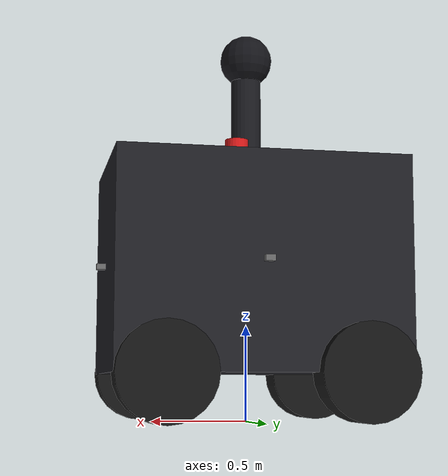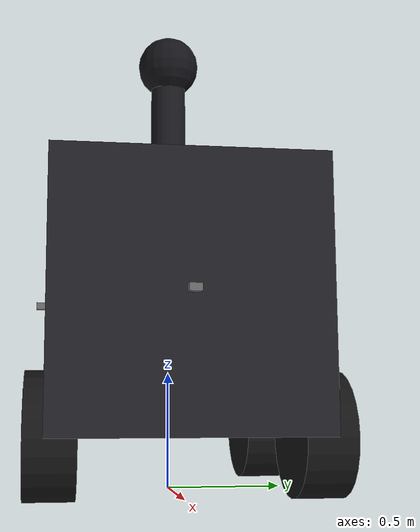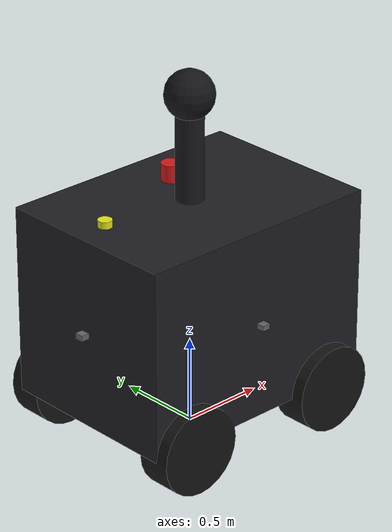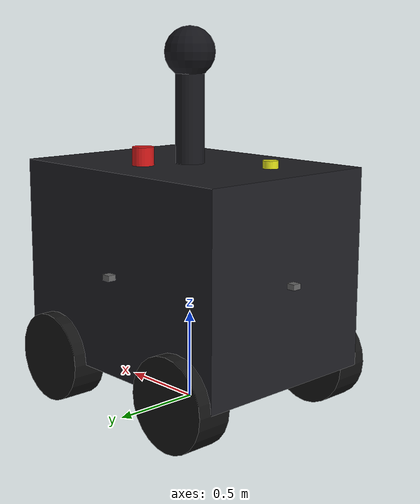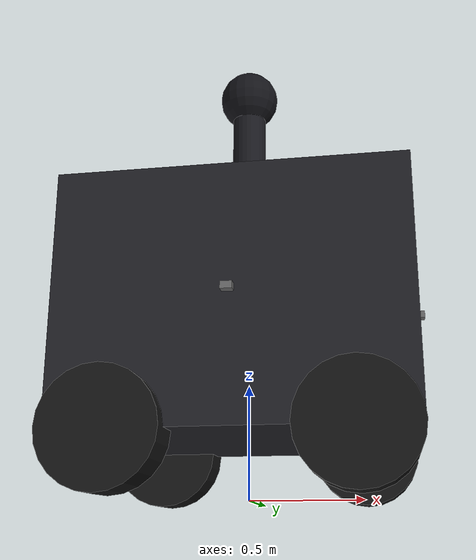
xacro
<?xml version="1.0" ?>
<robot xmlns:xacro="http://www.ros.org/wiki/xacro" name="pguard">

  <xacro:property name="base_length" value="1.50"/>
  <xacro:property name="base_width"  value="1.10"/>
  <xacro:property name="base_height" value="1.10"/>   <!-- chassis box; turret adds another 0.5 m -->
  <xacro:property name="turret_height" value="0.50"/>
  <xacro:property name="base_mass"   value="220.0"/>   <!-- chassis + battery -->
  <xacro:property name="turret_mass" value="10.0"/>

  <xacro:property name="wheel_radius" value="0.25"/>   <!-- 50 cm diameter, so 20 cm obstacle climb is plausible -->
  <xacro:property name="wheel_width"  value="0.20"/>
  <xacro:property name="wheel_mass"   value="5.0"/>
  <xacro:property name="wheel_sep_y"  value="1.05"/>   <!-- lateral spacing -->
  <xacro:property name="wheel_sep_x"  value="1.00"/>   <!-- longitudinal spacing (front-rear) -->

  <xacro:macro name="box_inertia" params="m x y z">
    <inertia ixx="${m*(y*y + z*z)/12.0}" ixy="0" ixz="0"
             iyy="${m*(x*x + z*z)/12.0}" iyz="0"
             izz="${m*(x*x + y*y)/12.0}"/>
  </xacro:macro>

  <xacro:macro name="cylinder_inertia" params="m r h">
    <inertia ixx="${m*(3*r*r + h*h)/12.0}" ixy="0" ixz="0"
             iyy="${m*(3*r*r + h*h)/12.0}" iyz="0"
             izz="${m*r*r/2.0}"/>
  </xacro:macro>

  <link name="base_footprint"/>
  <joint name="base_footprint_joint" type="fixed">
    <parent link="base_footprint"/>
    <child  link="base_link"/>
    <origin xyz="0 0 ${wheel_radius}" rpy="0 0 0"/>
  </joint>

  <link name="base_link">
    <visual>
      <origin xyz="0 0 ${base_height/2}"/>
      <geometry><box size="${base_length} ${base_width} ${base_height}"/></geometry>
      <material name="pguard_black"><color rgba="0.12 0.12 0.14 1"/></material>
    </visual>
    <collision>
      <origin xyz="0 0 ${base_height/2}"/>
      <geometry><box size="${base_length} ${base_width} ${base_height}"/></geometry>
    </collision>
    <inertial>
      <origin xyz="0 0 ${base_height/2}"/>
      <mass value="${base_mass}"/>
      <xacro:box_inertia m="${base_mass}" x="${base_length}" y="${base_width}" z="${base_height}"/>
    </inertial>
  </link>

  <link name="turret_link">
    <visual>
      <geometry><cylinder radius="0.08" length="${turret_height}"/></geometry>
      <material name="pguard_dark"><color rgba="0.10 0.10 0.12 1"/></material>
    </visual>
    <collision>
      <geometry><cylinder radius="0.08" length="${turret_height}"/></geometry>
    </collision>
    <inertial>
      <mass value="${turret_mass}"/>
      <xacro:cylinder_inertia m="${turret_mass}" r="0.08" h="${turret_height}"/>
    </inertial>
  </link>
  <joint name="turret_joint" type="fixed">
    <parent link="base_link"/>
    <child  link="turret_link"/>
    <origin xyz="0 0 ${base_height + turret_height/2}" rpy="0 0 0"/>
  </joint>

  <!-- Turret head: rounded black dome housing the pan/tilt day/night + thermal cameras -->
  <link name="turret_head_link">
    <visual>
      <geometry><sphere radius="0.14"/></geometry>
      <material name="turret_head_black"><color rgba="0.08 0.08 0.10 1"/></material>
    </visual>
    <collision>
      <geometry><sphere radius="0.14"/></geometry>
    </collision>
    <inertial>
      <mass value="2.0"/>
      <inertia ixx="0.02" ixy="0" ixz="0" iyy="0.02" iyz="0" izz="0.02"/>
    </inertial>
  </link>
  <joint name="turret_head_joint" type="fixed">
    <parent link="turret_link"/>
    <child  link="turret_head_link"/>
    <origin xyz="0 0 ${turret_height/2 + 0.10}" rpy="0 0 0"/>
  </joint>

  <link name="beacon_link">
    <visual>
      <geometry><cylinder radius="0.06" length="0.10"/></geometry>
      <material name="beacon_red"><color rgba="0.85 0.10 0.10 1"/></material>
    </visual>
    <inertial>
      <mass value="0.1"/>
      <xacro:cylinder_inertia m="0.1" r="0.06" h="0.10"/>
    </inertial>
  </link>
  <joint name="beacon_joint" type="fixed">
    <parent link="base_link"/>
    <child  link="beacon_link"/>
    <!-- Red beacon mounted on the chassis roof, right of the turret pole -->
    <origin xyz="0.10 0.25 ${base_height + 0.05}"/>
  </joint>

  <xacro:macro name="wheel" params="prefix x_pos y_pos">
    <link name="${prefix}_wheel_link">
      <visual>
        <origin rpy="1.5707963 0 0"/>
        <geometry><cylinder radius="${wheel_radius}" length="${wheel_width}"/></geometry>
        <material name="tire_black"><color rgba="0.08 0.08 0.08 1"/></material>
      </visual>
      <collision>
        <origin rpy="1.5707963 0 0"/>
        <geometry><cylinder radius="${wheel_radius}" length="${wheel_width}"/></geometry>
      </collision>
      <inertial>
        <mass value="${wheel_mass}"/>
        <origin rpy="1.5707963 0 0"/>
        <xacro:cylinder_inertia m="${wheel_mass}" r="${wheel_radius}" h="${wheel_width}"/>
      </inertial>
    </link>

    <joint name="${prefix}_wheel_joint" type="continuous">
      <parent link="base_link"/>
      <child  link="${prefix}_wheel_link"/>
      <origin xyz="${x_pos} ${y_pos} 0" rpy="0 0 0"/>
      <axis xyz="0 1 0"/>
      <dynamics damping="0.5" friction="0.2"/>
    </joint>
  </xacro:macro>

  <xacro:wheel prefix="front_left"  x_pos="${ wheel_sep_x/2}" y_pos="${ wheel_sep_y/2}"/>
  <xacro:wheel prefix="front_right" x_pos="${ wheel_sep_x/2}" y_pos="${-wheel_sep_y/2}"/>
  <xacro:wheel prefix="rear_left"   x_pos="${-wheel_sep_x/2}" y_pos="${ wheel_sep_y/2}"/>
  <xacro:wheel prefix="rear_right"  x_pos="${-wheel_sep_x/2}" y_pos="${-wheel_sep_y/2}"/>

  <link name="imu_link">
    <inertial><mass value="0.05"/><xacro:box_inertia m="0.05" x="0.04" y="0.04" z="0.02"/></inertial>
  </link>
  <joint name="imu_joint" type="fixed">
    <parent link="base_link"/><child link="imu_link"/>
    <origin xyz="0 0 ${base_height/2}"/>
  </joint>

  <link name="gps_link">
    <visual>
      <geometry><cylinder radius="0.04" length="0.04"/></geometry>
      <material name="gps_yellow"><color rgba="0.9 0.9 0.1 1"/></material>
    </visual>
    <inertial><mass value="0.1"/><xacro:cylinder_inertia m="0.1" r="0.04" h="0.04"/></inertial>
  </link>
  <joint name="gps_joint" type="fixed">
    <parent link="base_link"/><child link="gps_link"/>
    <origin xyz="-${base_length/2 - 0.15} 0 ${base_height + 0.05}"/>
  </joint>

  <xacro:macro name="sonar" params="prefix xyz rpy">
    <link name="${prefix}_sonar_link">
      <visual>
        <geometry><box size="0.05 0.05 0.03"/></geometry>
        <material name="sonar_gray"><color rgba="0.4 0.4 0.4 1"/></material>
      </visual>
      <inertial><mass value="0.02"/><xacro:box_inertia m="0.02" x="0.05" y="0.05" z="0.03"/></inertial>
    </link>
    <joint name="${prefix}_sonar_joint" type="fixed">
      <parent link="base_link"/><child link="${prefix}_sonar_link"/>
      <origin xyz="${xyz}" rpy="${rpy}"/>
    </joint>
  </xacro:macro>

  <xacro:sonar prefix="front" xyz="${ base_length/2 + 0.02} 0 ${base_height/2}" rpy="0 0 0"/>
  <xacro:sonar prefix="rear"  xyz="${-base_length/2 - 0.02} 0 ${base_height/2}" rpy="0 0 3.14159"/>
  <xacro:sonar prefix="left"  xyz="0 ${ base_width/2 + 0.02} ${base_height/2}"  rpy="0 0 1.5707963"/>
  <xacro:sonar prefix="right" xyz="0 ${-base_width/2 - 0.02} ${base_height/2}"  rpy="0 0 -1.5707963"/>

  <link name="camera_link">
    <inertial><mass value="0.1"/><xacro:box_inertia m="0.1" x="0.05" y="0.05" z="0.05"/></inertial>
  </link>
  <joint name="camera_joint" type="fixed">
    <parent link="turret_link"/><child link="camera_link"/>
    <origin xyz="0.15 0 0" rpy="0 0 0"/>
  </joint>

  <xacro:include filename="$(find my_pguard_bot)/description/pguard.gazebo.xacro"/>
</robot>
